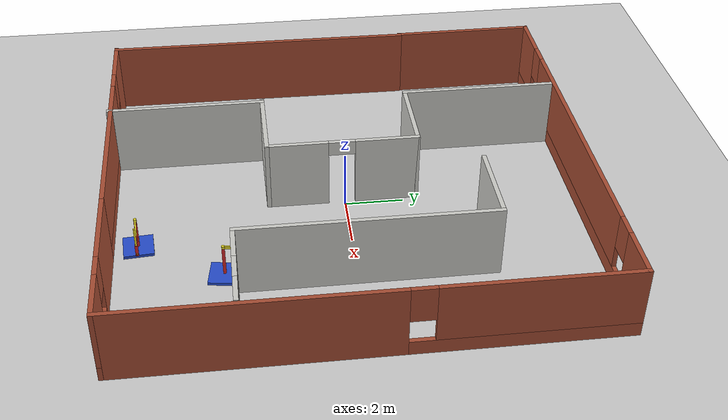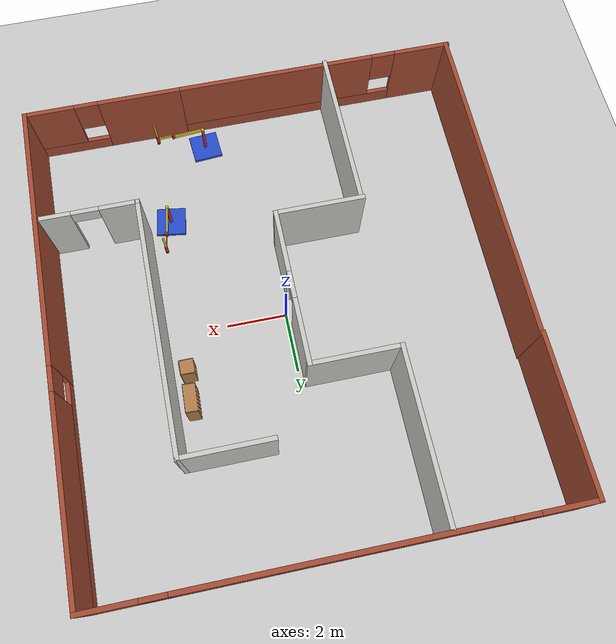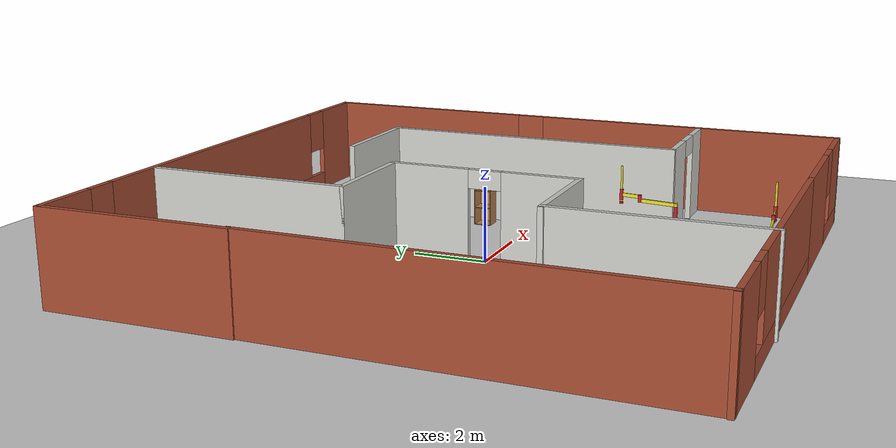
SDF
<sdf version="1.7">
 <world name="default">
  <scene>
   <ambient>0.68 0.68 0.68 1</ambient>
   <shadows>0</shadows>
   <sky><sunrise>6</sunrise><clouds><speed>12</speed></clouds></sky>
   <background>0.7 0.7 0.7 1</background>
  </scene>
  <physics type="ode">
   <max_step_size>0.001</max_step_size>
   <real_time_factor>1</real_time_factor>
   <real_time_update_rate>1000</real_time_update_rate>
  </physics>
  <light name="sun" type="directional">
   <pose>0 0 10 0 -0 0</pose>
   <diffuse>0.8 0.8 0.8 1</diffuse>
   <specular>0.2 0.2 0.2 1</specular>
   <attenuation>
    <range>1000</range>
    <constant>0.9</constant>
    <linear>0.01</linear>
    <quadratic>0.001</quadratic>
   </attenuation>
   <direction>-0.5 0.1 -0.9</direction>
   <spot><inner_angle>0</inner_angle><outer_angle>0</outer_angle><falloff>0</falloff></spot>
  </light>
  <model name="ISCAS_groundplane">
   <static>1</static>
   <link name="link">
    <collision name="collision">
     <geometry><plane><normal>0 0 1</normal><size>30 30</size></plane></geometry>
     <surface><friction><ode><mu>100</mu><mu2>50</mu2></ode></friction></surface>
    </collision>
    <visual name="visual">
     <cast_shadows>0</cast_shadows>
     <geometry><plane><normal>0 0 1</normal><size>30 30</size></plane></geometry>
     <material>
      <script>
       <uri>model://ISCAS_groundplane/materials/scripts</uri>
       <uri>model://ISCAS_groundplane/materials/textures</uri>
       <name>ISCAS_groundplane/Image</name>
      </script>
     </material>
    </visual>
   </link>
  </model>
  <model name="SampleScene">
   <pose>7e-06 -3.2e-05 0 0 0 -1.57001</pose>
   <link name="Wall_0">
    <collision name="Wall_0_Collision">
     <geometry><box><size>11.0007 0.15 2.5</size></box></geometry>
     <pose>0 0 1.25 0 -0 0</pose>
    </collision>
    <visual name="Wall_0_Visual">
     <pose>0 0 1.25 0 -0 0</pose>
     <geometry><box><size>11.0007 0.15 2.5</size></box></geometry>
     <material>
      <script><uri>file://media/materials/scripts/gazebo.material</uri><name>Gazebo/Bricks</name></script>
      <ambient>1 1 1 1</ambient>
     </material>
     <meta><layer>0</layer></meta>
    </visual>
    <pose>2.4645 -7.28966 0 0 -0 -0.007415</pose>
   </link>
   <link name="Wall_1">
    <pose>7.8895 -2.675 0 0 -0 1.5708</pose>
    <visual name="Wall_1_Visual_0">
     <pose>-3.78336 0 1.25 0 -0 0</pose>
     <geometry><box><size>1.97351 0.15 2.5</size></box></geometry>
     <material>
      <script><uri>file://media/materials/scripts/gazebo.material</uri><name>Gazebo/Bricks</name></script>
      <ambient>1 1 1 1</ambient>
     </material>
     <meta><layer>0</layer></meta>
    </visual>
    <collision name="Wall_1_Collision_0">
     <geometry><box><size>1.97351 0.15 2.5</size></box></geometry>
     <pose>-3.78336 0 1.25 0 -0 0</pose>
    </collision>
    <visual name="Wall_1_Visual_1">
     <pose>0.986754 0 0.25 0 -0 0</pose>
     <geometry><box><size>7.56672 0.15 0.5</size></box></geometry>
     <material>
      <script><uri>file://media/materials/scripts/gazebo.material</uri><name>Gazebo/Bricks</name></script>
      <ambient>1 1 1 1</ambient>
     </material>
     <meta><layer>0</layer></meta>
    </visual>
    <collision name="Wall_1_Collision_1">
     <geometry><box><size>7.56672 0.15 0.5</size></box></geometry>
     <pose>0.986754 0 0.25 0 -0 0</pose>
    </collision>
    <visual name="Wall_1_Visual_2">
     <pose>1.38675 0 1.5 0 -0 0</pose>
     <geometry><box><size>6.76672 0.15 2</size></box></geometry>
     <material>
      <script><uri>file://media/materials/scripts/gazebo.material</uri><name>Gazebo/Bricks</name></script>
      <ambient>1 1 1 1</ambient>
     </material>
     <meta><layer>0</layer></meta>
    </visual>
    <collision name="Wall_1_Collision_2">
     <geometry><box><size>6.76672 0.15 2</size></box></geometry>
     <pose>1.38675 0 1.5 0 -0 0</pose>
    </collision>
    <visual name="Wall_1_Visual_3">
     <pose>-2.39661 0 1.9 0 -0 0</pose>
     <geometry><box><size>0.8 0.15 1.2</size></box></geometry>
     <material>
      <script><uri>file://media/materials/scripts/gazebo.material</uri><name>Gazebo/Bricks</name></script>
      <ambient>1 1 1 1</ambient>
     </material>
     <meta><layer>0</layer></meta>
    </visual>
    <collision name="Wall_1_Collision_3">
     <geometry><box><size>0.8 0.15 1.2</size></box></geometry>
     <pose>-2.39661 0 1.9 0 -0 0</pose>
    </collision>
   </link>
   <link name="Wall_11">
    <pose>3.89864 5.63446 0 0 -0 -1.5708</pose>
    <visual name="Wall_11_Visual_0">
     <pose>-1.11091 0 1.25 0 -0 0</pose>
     <geometry><box><size>1.02818 0.15 2.5</size></box></geometry>
     <material>
      <script><uri>file://media/materials/scripts/gazebo.material</uri><name>Gazebo/CeilingTiled</name></script>
      <ambient>0.921569 0.807843 0.615686 1</ambient>
     </material>
     <meta><layer>0</layer></meta>
    </visual>
    <collision name="Wall_11_Collision_0">
     <geometry><box><size>1.02818 0.15 2.5</size></box></geometry>
     <pose>-1.11091 0 1.25 0 -0 0</pose>
    </collision>
    <visual name="Wall_11_Visual_1">
     <pose>0.964093 0 1.25 0 -0 0</pose>
     <geometry><box><size>1.32181 0.15 2.5</size></box></geometry>
     <material>
      <script><uri>file://media/materials/scripts/gazebo.material</uri><name>Gazebo/CeilingTiled</name></script>
      <ambient>0.921569 0.807843 0.615686 1</ambient>
     </material>
     <meta><layer>0</layer></meta>
    </visual>
    <collision name="Wall_11_Collision_1">
     <geometry><box><size>1.32181 0.15 2.5</size></box></geometry>
     <pose>0.964093 0 1.25 0 -0 0</pose>
    </collision>
    <visual name="Wall_11_Visual_2">
     <pose>-0.146815 0 2.25 0 -0 0</pose>
     <geometry><box><size>0.9 0.15 0.5</size></box></geometry>
     <material>
      <script><uri>file://media/materials/scripts/gazebo.material</uri><name>Gazebo/CeilingTiled</name></script>
      <ambient>0.921569 0.807843 0.615686 1</ambient>
     </material>
     <meta><layer>0</layer></meta>
    </visual>
    <collision name="Wall_11_Collision_2">
     <geometry><box><size>0.9 0.15 0.5</size></box></geometry>
     <pose>-0.146815 0 2.25 0 -0 0</pose>
    </collision>
   </link>
   <link name="Wall_12">
    <collision name="Wall_12_Collision">
     <geometry><box><size>8.5 0.15 2.5</size></box></geometry>
     <pose>0 0 1.25 0 -0 0</pose>
    </collision>
    <visual name="Wall_12_Visual">
     <pose>0 0 1.25 0 -0 0</pose>
     <geometry><box><size>8.5 0.15 2.5</size></box></geometry>
     <material>
      <script><uri>file://media/materials/scripts/gazebo.material</uri><name>Gazebo/CeilingTiled</name></script>
      <ambient>0.921569 0.807843 0.615686 1</ambient>
     </material>
     <meta><layer>0</layer></meta>
    </visual>
    <pose>-0.276365 4.08446 0 0 -0 3.14159</pose>
   </link>
   <link name="Wall_13">
    <collision name="Wall_13_Collision">
     <geometry><box><size>3 0.15 2.5</size></box></geometry>
     <pose>0 0 1.25 0 -0 0</pose>
    </collision>
    <visual name="Wall_13_Visual">
     <pose>0 0 1.25 0 -0 0</pose>
     <geometry><box><size>3 0.15 2.5</size></box></geometry>
     <material>
      <script><uri>file://media/materials/scripts/gazebo.material</uri><name>Gazebo/CeilingTiled</name></script>
      <ambient>0.921569 0.807843 0.615686 1</ambient>
     </material>
     <meta><layer>0</layer></meta>
    </visual>
    <pose>-4.45137 2.65946 0 0 -0 -1.5708</pose>
   </link>
   <link name="Wall_24">
    <collision name="Wall_24_Collision">
     <geometry><box><size>5.5 0.15 2.5</size></box></geometry>
     <pose>0 0 1.25 0 -0 0</pose>
    </collision>
    <visual name="Wall_24_Visual">
     <pose>0 0 1.25 0 -0 0</pose>
     <geometry><box><size>5.5 0.15 2.5</size></box></geometry>
     <material>
      <script><uri>file://media/materials/scripts/gazebo.material</uri><name>Gazebo/CeilingTiled</name></script>
      <ambient>0.921569 0.807843 0.615686 1</ambient>
     </material>
     <meta><layer>0</layer></meta>
    </visual>
    <pose>-5.16403 -3.04999 0 0 -0 0</pose>
   </link>
   <link name="Wall_25">
    <collision name="Wall_25_Collision">
     <geometry><box><size>3 0.15 2.5</size></box></geometry>
     <pose>0 0 1.25 0 -0 0</pose>
    </collision>
    <visual name="Wall_25_Visual">
     <pose>0 0 1.25 0 -0 0</pose>
     <geometry><box><size>3 0.15 2.5</size></box></geometry>
     <material>
      <script><uri>file://media/materials/scripts/gazebo.material</uri><name>Gazebo/CeilingTiled</name></script>
      <ambient>0.921569 0.807843 0.615686 1</ambient>
     </material>
     <meta><layer>0</layer></meta>
    </visual>
    <pose>-2.48903 -1.62499 0 0 -0 1.5708</pose>
   </link>
   <link name="Wall_28">
    <pose>0.060971 -0.199991 0 0 -0 0</pose>
    <visual name="Wall_28_Visual_0">
     <pose>-1.52407 0 1.25 0 -0 0</pose>
     <geometry><box><size>2.20186 0.15 2.5</size></box></geometry>
     <material>
      <script><uri>file://media/materials/scripts/gazebo.material</uri><name>Gazebo/CeilingTiled</name></script>
      <ambient>0.921569 0.807843 0.615686 1</ambient>
     </material>
     <meta><layer>0</layer></meta>
    </visual>
    <collision name="Wall_28_Collision_0">
     <geometry><box><size>2.20186 0.15 2.5</size></box></geometry>
     <pose>-1.52407 0 1.25 0 -0 0</pose>
    </collision>
    <visual name="Wall_28_Visual_1">
     <pose>1.55093 0 1.25 0 -0 0</pose>
     <geometry><box><size>2.14814 0.15 2.5</size></box></geometry>
     <material>
      <script><uri>file://media/materials/scripts/gazebo.material</uri><name>Gazebo/CeilingTiled</name></script>
      <ambient>0.921569 0.807843 0.615686 1</ambient>
     </material>
     <meta><layer>0</layer></meta>
    </visual>
    <collision name="Wall_28_Collision_1">
     <geometry><box><size>2.14814 0.15 2.5</size></box></geometry>
     <pose>1.55093 0 1.25 0 -0 0</pose>
    </collision>
    <visual name="Wall_28_Visual_2">
     <pose>0.026859 0 2.25 0 -0 0</pose>
     <geometry><box><size>0.9 0.15 0.5</size></box></geometry>
     <material>
      <script><uri>file://media/materials/scripts/gazebo.material</uri><name>Gazebo/CeilingTiled</name></script>
      <ambient>0.921569 0.807843 0.615686 1</ambient>
     </material>
     <meta><layer>0</layer></meta>
    </visual>
    <collision name="Wall_28_Collision_2">
     <geometry><box><size>0.9 0.15 0.5</size></box></geometry>
     <pose>0.026859 0 2.25 0 -0 0</pose>
    </collision>
   </link>
   <link name="Wall_29">
    <collision name="Wall_29_Collision">
     <geometry><box><size>3.016 0.15 2.5</size></box></geometry>
     <pose>0 0 1.25 0 -0 0</pose>
    </collision>
    <visual name="Wall_29_Visual">
     <pose>0 0 1.25 0 -0 0</pose>
     <geometry><box><size>3.016 0.15 2.5</size></box></geometry>
     <material>
      <script><uri>file://media/materials/scripts/gazebo.material</uri><name>Gazebo/CeilingTiled</name></script>
      <ambient>0.921569 0.807843 0.615686 1</ambient>
     </material>
     <meta><layer>0</layer></meta>
    </visual>
    <pose>2.61097 -1.63299 0 0 -0 -1.5708</pose>
   </link>
   <link name="Wall_3">
    <pose>7.8895 4.69511 0 0 -0 1.5708</pose>
    <visual name="Wall_3_Visual_0">
     <pose>-1.27132 0 1.25 0 -0 0</pose>
     <geometry><box><size>2.95736 0.15 2.5</size></box></geometry>
     <material>
      <script><uri>file://media/materials/scripts/gazebo.material</uri><name>Gazebo/Bricks</name></script>
      <ambient>1 1 1 1</ambient>
     </material>
     <meta><layer>0</layer></meta>
    </visual>
    <collision name="Wall_3_Collision_0">
     <geometry><box><size>2.95736 0.15 2.5</size></box></geometry>
     <pose>-1.27132 0 1.25 0 -0 0</pose>
    </collision>
    <visual name="Wall_3_Visual_1">
     <pose>1.47868 0 0.25 0 -0 0</pose>
     <geometry><box><size>2.54264 0.15 0.5</size></box></geometry>
     <material>
      <script><uri>file://media/materials/scripts/gazebo.material</uri><name>Gazebo/Bricks</name></script>
      <ambient>1 1 1 1</ambient>
     </material>
     <meta><layer>0</layer></meta>
    </visual>
    <collision name="Wall_3_Collision_1">
     <geometry><box><size>2.54264 0.15 0.5</size></box></geometry>
     <pose>1.47868 0 0.25 0 -0 0</pose>
    </collision>
    <visual name="Wall_3_Visual_2">
     <pose>1.87868 0 1.5 0 -0 0</pose>
     <geometry><box><size>1.74264 0.15 2</size></box></geometry>
     <material>
      <script><uri>file://media/materials/scripts/gazebo.material</uri><name>Gazebo/Bricks</name></script>
      <ambient>1 1 1 1</ambient>
     </material>
     <meta><layer>0</layer></meta>
    </visual>
    <collision name="Wall_3_Collision_2">
     <geometry><box><size>1.74264 0.15 2</size></box></geometry>
     <pose>1.87868 0 1.5 0 -0 0</pose>
    </collision>
    <visual name="Wall_3_Visual_3">
     <pose>0.607358 0 1.9 0 -0 0</pose>
     <geometry><box><size>0.8 0.15 1.2</size></box></geometry>
     <material>
      <script><uri>file://media/materials/scripts/gazebo.material</uri><name>Gazebo/Bricks</name></script>
      <ambient>1 1 1 1</ambient>
     </material>
     <meta><layer>0</layer></meta>
    </visual>
    <collision name="Wall_3_Collision_3">
     <geometry><box><size>0.8 0.15 1.2</size></box></geometry>
     <pose>0.607358 0 1.9 0 -0 0</pose>
    </collision>
   </link>
   <link name="Wall_30">
    <collision name="Wall_30_Collision">
     <geometry><box><size>5.5 0.15 2.5</size></box></geometry>
     <pose>0 0 1.25 0 -0 0</pose>
    </collision>
    <visual name="Wall_30_Visual">
     <pose>0 0 1.25 0 -0 0</pose>
     <geometry><box><size>5.5 0.15 2.5</size></box></geometry>
     <material>
      <script><uri>file://media/materials/scripts/gazebo.material</uri><name>Gazebo/CeilingTiled</name></script>
      <ambient>0.921569 0.807843 0.615686 1</ambient>
     </material>
     <meta><layer>0</layer></meta>
    </visual>
    <pose>5.28597 -3.01279 0 0 -0 0</pose>
   </link>
   <link name="Wall_7">
    <pose>-0.035498 7.37011 0 0 -0 3.14159</pose>
    <visual name="Wall_7_Visual_0">
     <pose>-3.51686 0 1.25 0 -0 0</pose>
     <geometry><box><size>8.96628 0.15 2.5</size></box></geometry>
     <material>
      <script><uri>file://media/materials/scripts/gazebo.material</uri><name>Gazebo/Bricks</name></script>
      <ambient>1 1 1 1</ambient>
     </material>
     <meta><layer>0</layer></meta>
    </visual>
    <collision name="Wall_7_Collision_0">
     <geometry><box><size>8.96628 0.15 2.5</size></box></geometry>
     <pose>-3.51686 0 1.25 0 -0 0</pose>
    </collision>
    <visual name="Wall_7_Visual_1">
     <pose>4.48314 0 0.25 0 -0 0</pose>
     <geometry><box><size>7.03372 0.15 0.5</size></box></geometry>
     <material>
      <script><uri>file://media/materials/scripts/gazebo.material</uri><name>Gazebo/Bricks</name></script>
      <ambient>1 1 1 1</ambient>
     </material>
     <meta><layer>0</layer></meta>
    </visual>
    <collision name="Wall_7_Collision_1">
     <geometry><box><size>7.03372 0.15 0.5</size></box></geometry>
     <pose>4.48314 0 0.25 0 -0 0</pose>
    </collision>
    <visual name="Wall_7_Visual_2">
     <pose>4.88314 0 1.5 0 -0 0</pose>
     <geometry><box><size>6.23372 0.15 2</size></box></geometry>
     <material>
      <script><uri>file://media/materials/scripts/gazebo.material</uri><name>Gazebo/Bricks</name></script>
      <ambient>1 1 1 1</ambient>
     </material>
     <meta><layer>0</layer></meta>
    </visual>
    <collision name="Wall_7_Collision_2">
     <geometry><box><size>6.23372 0.15 2</size></box></geometry>
     <pose>4.88314 0 1.5 0 -0 0</pose>
    </collision>
    <visual name="Wall_7_Visual_3">
     <pose>1.36628 0 1.9 0 -0 0</pose>
     <geometry><box><size>0.8 0.15 1.2</size></box></geometry>
     <material>
      <script><uri>file://media/materials/scripts/gazebo.material</uri><name>Gazebo/Bricks</name></script>
      <ambient>1 1 1 1</ambient>
     </material>
     <meta><layer>0</layer></meta>
    </visual>
    <collision name="Wall_7_Collision_3">
     <geometry><box><size>0.8 0.15 1.2</size></box></geometry>
     <pose>1.36628 0 1.9 0 -0 0</pose>
    </collision>
   </link>
   <link name="Wall_8">
    <pose>-7.9605 0.05 0 0 -0 -1.5708</pose>
    <visual name="Wall_8_Visual_0">
     <pose>-6.49719 0 1.25 0 -0 0</pose>
     <geometry><box><size>1.79584 0.15 2.5</size></box></geometry>
     <material>
      <script><uri>file://media/materials/scripts/gazebo.material</uri><name>Gazebo/Bricks</name></script>
      <ambient>1 1 1 1</ambient>
     </material>
     <meta><layer>0</layer></meta>
    </visual>
    <collision name="Wall_8_Collision_0">
     <geometry><box><size>1.79584 0.15 2.5</size></box></geometry>
     <pose>-6.49719 0 1.25 0 -0 0</pose>
    </collision>
    <visual name="Wall_8_Visual_1">
     <pose>0.897921 0 0.25 0 -0 0</pose>
     <geometry><box><size>12.9944 0.15 0.5</size></box></geometry>
     <material>
      <script><uri>file://media/materials/scripts/gazebo.material</uri><name>Gazebo/Bricks</name></script>
      <ambient>1 1 1 1</ambient>
     </material>
     <meta><layer>0</layer></meta>
    </visual>
    <collision name="Wall_8_Collision_1">
     <geometry><box><size>12.9944 0.15 0.5</size></box></geometry>
     <pose>0.897921 0 0.25 0 -0 0</pose>
    </collision>
    <visual name="Wall_8_Visual_2">
     <pose>0.014368 0 1.5 0 -0 0</pose>
     <geometry><box><size>9.62728 0.15 2</size></box></geometry>
     <material>
      <script><uri>file://media/materials/scripts/gazebo.material</uri><name>Gazebo/Bricks</name></script>
      <ambient>1 1 1 1</ambient>
     </material>
     <meta><layer>0</layer></meta>
    </visual>
    <collision name="Wall_8_Collision_2">
     <geometry><box><size>9.62728 0.15 2</size></box></geometry>
     <pose>0.014368 0 1.5 0 -0 0</pose>
    </collision>
    <visual name="Wall_8_Visual_3">
     <pose>6.51156 0 1.5 0 -0 0</pose>
     <geometry><box><size>1.76711 0.15 2</size></box></geometry>
     <material>
      <script><uri>file://media/materials/scripts/gazebo.material</uri><name>Gazebo/Bricks</name></script>
      <ambient>1 1 1 1</ambient>
     </material>
     <meta><layer>0</layer></meta>
    </visual>
    <collision name="Wall_8_Collision_3">
     <geometry><box><size>1.76711 0.15 2</size></box></geometry>
     <pose>6.51156 0 1.5 0 -0 0</pose>
    </collision>
    <visual name="Wall_8_Visual_4">
     <pose>-5.19927 0 1.9 0 -0 0</pose>
     <geometry><box><size>0.8 0.15 1.2</size></box></geometry>
     <material>
      <script><uri>file://media/materials/scripts/gazebo.material</uri><name>Gazebo/Bricks</name></script>
      <ambient>1 1 1 1</ambient>
     </material>
     <meta><layer>0</layer></meta>
    </visual>
    <collision name="Wall_8_Collision_4">
     <geometry><box><size>0.8 0.15 1.2</size></box></geometry>
     <pose>-5.19927 0 1.9 0 -0 0</pose>
    </collision>
    <visual name="Wall_8_Visual_5">
     <pose>5.22801 0 1.9 0 -0 0</pose>
     <geometry><box><size>0.8 0.15 1.2</size></box></geometry>
     <material>
      <script><uri>file://media/materials/scripts/gazebo.material</uri><name>Gazebo/Bricks</name></script>
      <ambient>1 1 1 1</ambient>
     </material>
     <meta><layer>0</layer></meta>
    </visual>
    <collision name="Wall_8_Collision_5">
     <geometry><box><size>0.8 0.15 1.2</size></box></geometry>
     <pose>5.22801 0 1.9 0 -0 0</pose>
    </collision>
   </link>
   <link name="Wall_9">
    <collision name="Wall_9_Collision">
     <geometry><box><size>5.15037 0.15 2.5</size></box></geometry>
     <pose>0 0 1.25 0 -0 0</pose>
    </collision>
    <visual name="Wall_9_Visual">
     <pose>0 0 1.25 0 -0 0</pose>
     <geometry><box><size>5.15037 0.15 2.5</size></box></geometry>
     <material>
      <script><uri>file://media/materials/scripts/gazebo.material</uri><name>Gazebo/Bricks</name></script>
      <ambient>1 1 1 1</ambient>
     </material>
     <meta><layer>0</layer></meta>
    </visual>
    <pose>-5.4605 -7.3 0 0 -0 0.004136</pose>
   </link>
   <static>1</static>
  </model>
  <gravity>0 0 -9.8</gravity>
  <magnetic_field>6e-06 2.3e-05 -4.2e-05</magnetic_field>
  <atmosphere type="adiabatic"/>
  <spherical_coordinates>
   <surface_model>EARTH_WGS84</surface_model>
   <latitude_deg>0</latitude_deg>
   <longitude_deg>0</longitude_deg>
   <elevation>0</elevation>
   <heading_deg>0</heading_deg>
  </spherical_coordinates>
  <model name="bookshelf">
   <static>1</static>
   <link name="link">
    <inertial><mass>1</mass></inertial>
    <collision name="back">
     <pose>0 0.005 0.6 0 -0 0</pose>
     <geometry><box><size>0.9 0.01 1.2</size></box></geometry>
    </collision>
    <visual name="visual1">
     <pose>0 0.005 0.6 0 -0 0</pose>
     <geometry><box><size>0.9 0.01 1.2</size></box></geometry>
     <material>
      <script><uri>file://media/materials/scripts/gazebo.material</uri><name>Gazebo/Wood</name></script>
     </material>
    </visual>
    <collision name="left_side">
     <pose>0.45 -0.195 0.6 0 -0 0</pose>
     <geometry><box><size>0.02 0.4 1.2</size></box></geometry>
    </collision>
    <visual name="visual2">
     <pose>0.45 -0.195 0.6 0 -0 0</pose>
     <geometry><box><size>0.02 0.4 1.2</size></box></geometry>
     <material>
      <script><uri>file://media/materials/scripts/gazebo.material</uri><name>Gazebo/Wood</name></script>
     </material>
    </visual>
    <collision name="right_side">
     <pose>-0.45 -0.195 0.6 0 -0 0</pose>
     <geometry><box><size>0.02 0.4 1.2</size></box></geometry>
    </collision>
    <visual name="visual3">
     <pose>-0.45 -0.195 0.6 0 -0 0</pose>
     <geometry><box><size>0.02 0.4 1.2</size></box></geometry>
     <material>
      <script><uri>file://media/materials/scripts/gazebo.material</uri><name>Gazebo/Wood</name></script>
     </material>
    </visual>
    <collision name="bottom">
     <pose>0 -0.195 0.03 0 -0 0</pose>
     <geometry><box><size>0.88 0.4 0.06</size></box></geometry>
    </collision>
    <visual name="visual4">
     <pose>0 -0.195 0.03 0 -0 0</pose>
     <geometry><box><size>0.88 0.4 0.06</size></box></geometry>
     <material>
      <script><uri>file://media/materials/scripts/gazebo.material</uri><name>Gazebo/Wood</name></script>
     </material>
    </visual>
    <collision name="top">
     <pose>0 -0.195 1.19 0 -0 0</pose>
     <geometry><box><size>0.88 0.4 0.02</size></box></geometry>
    </collision>
    <visual name="visual5">
     <pose>0 -0.195 1.19 0 -0 0</pose>
     <geometry><box><size>0.88 0.4 0.02</size></box></geometry>
     <material>
      <script><uri>file://media/materials/scripts/gazebo.material</uri><name>Gazebo/Wood</name></script>
     </material>
    </visual>
    <collision name="low_shelf">
     <pose>0 -0.195 0.43 0 -0 0</pose>
     <geometry><box><size>0.88 0.4 0.02</size></box></geometry>
    </collision>
    <visual name="visual6">
     <pose>0 -0.195 0.43 0 -0 0</pose>
     <geometry><box><size>0.88 0.4 0.02</size></box></geometry>
     <material>
      <script><uri>file://media/materials/scripts/gazebo.material</uri><name>Gazebo/Wood</name></script>
     </material>
    </visual>
    <collision name="high_shelf">
     <pose>0 -0.195 0.8 0 -0 0</pose>
     <geometry><box><size>0.88 0.4 0.02</size></box></geometry>
    </collision>
    <visual name="visual7">
     <pose>0 -0.195 0.8 0 -0 0</pose>
     <geometry><box><size>0.88 0.4 0.02</size></box></geometry>
     <material>
      <script><uri>file://media/materials/scripts/gazebo.material</uri><name>Gazebo/Wood</name></script>
     </material>
    </visual>
   </link>
   <pose>3.72372 2.45918 0 0 0 -1.59979</pose>
  </model>
  <model name="wood_cube_5cm">
   <link name="link">
    <pose>0 0 0.025 0 -0 0</pose>
    <inertial>
     <mass>0.0565</mass>
     <inertia>
      <ixx>2.35417e-05</ixx>
      <ixy>0</ixy>
      <ixz>0</ixz>
      <iyy>2.35417e-05</iyy>
      <iyz>0</iyz>
      <izz>2.35417e-05</izz>
     </inertia>
    </inertial>
    <collision name="collision">
     <geometry><box><size>0.05 0.05 0.05</size></box></geometry>
     <surface>
      <contact>
       <poissons_ratio>0.347</poissons_ratio>
       <elastic_modulus>8.8e+09</elastic_modulus>
       <ode><kp>100000</kp><kd>1</kd><max_vel>1</max_vel><min_depth>0.001</min_depth></ode>
      </contact>
      <friction>
       <torsional>
        <coefficient>1</coefficient>
        <use_patch_radius>0</use_patch_radius>
        <surface_radius>0.05</surface_radius>
       </torsional>
      </friction>
     </surface>
    </collision>
    <visual name="visual">
     <geometry><box><size>0.05 0.05 0.05</size></box></geometry>
     <material>
      <script><uri>file://media/materials/scripts/gazebo.material</uri><name>Gazebo/Wood</name></script>
     </material>
    </visual>
   </link>
   <pose>3.44183 2.16207 0.058999 0 -0 0</pose>
  </model>
  <model name="beer">
   <link name="link">
    <pose>0 0 0.115 0 -0 0</pose>
    <inertial>
     <mass>0.39</mass>
     <inertia><ixx>0.00058</ixx><ixy>0</ixy><ixz>0</ixz><iyy>0.00058</iyy><iyz>0</iyz><izz>0.00019</izz></inertia>
    </inertial>
    <collision name="collision">
     <geometry><cylinder><radius>0.055</radius><length>0.23</length></cylinder></geometry>
    </collision>
    <visual name="visual">
     <geometry><cylinder><radius>0.055</radius><length>0.23</length></cylinder></geometry>
     <material>
      <script>
       <uri>model://beer/materials/scripts</uri>
       <uri>model://beer/materials/textures</uri>
       <name>Beer/Diffuse</name>
      </script>
     </material>
    </visual>
   </link>
   <pose>3.50537 2.76894 0.060004 1.4e-05 7.2e-05 -0.000266</pose>
  </model>
  <model name="beer_clone">
   <link name="link">
    <pose>0 0 0.115 0 -0 0</pose>
    <inertial>
     <mass>0.39</mass>
     <inertia><ixx>0.00058</ixx><ixy>0</ixy><ixz>0</ixz><iyy>0.00058</iyy><iyz>0</iyz><izz>0.00019</izz></inertia>
    </inertial>
    <collision name="collision">
     <geometry><cylinder><radius>0.055</radius><length>0.23</length></cylinder></geometry>
    </collision>
    <visual name="visual">
     <geometry><cylinder><radius>0.055</radius><length>0.23</length></cylinder></geometry>
     <material>
      <script>
       <uri>model://beer/materials/scripts</uri>
       <uri>model://beer/materials/textures</uri>
       <name>Beer/Diffuse</name>
      </script>
     </material>
    </visual>
   </link>
   <pose>3.48611 2.4567 0.060001 6e-06 2.4e-05 -0.000292</pose>
  </model>
  <model name="beer_clone_0">
   <link name="link">
    <pose>0 0 0.115 0 -0 0</pose>
    <inertial>
     <mass>0.39</mass>
     <inertia><ixx>0.00058</ixx><ixy>0</ixy><ixz>0</ixz><iyy>0.00058</iyy><iyz>0</iyz><izz>0.00019</izz></inertia>
    </inertial>
    <collision name="collision">
     <geometry><cylinder><radius>0.055</radius><length>0.23</length></cylinder></geometry>
    </collision>
    <visual name="visual">
     <geometry><cylinder><radius>0.055</radius><length>0.23</length></cylinder></geometry>
     <material>
      <script>
       <uri>model://beer/materials/scripts</uri>
       <uri>model://beer/materials/textures</uri>
       <name>Beer/Diffuse</name>
      </script>
     </material>
    </visual>
   </link>
   <pose>3.48792 2.63038 0.440005 2.2e-05 8.8e-05 -0.000442</pose>
  </model>
  <model name="cabinet">
   <static>1</static>
   <link name="cabinet_bottom_plate">
    <inertial>
     <pose>0 0 -1 0 -0 0</pose>
     <inertia><ixx>2.05</ixx><ixy>0</ixy><ixz>0</ixz><iyy>2.05</iyy><iyz>0</iyz><izz>2.05</izz></inertia>
     <mass>25</mass>
    </inertial>
    <collision name="cabinet_bottom_plate_geom">
     <pose>0 0 0.01 0 -0 0</pose>
     <geometry><box><size>0.45 0.45 0.02</size></box></geometry>
    </collision>
    <visual name="cabinet_bottom_plate_geom_visual">
     <pose>0 0 0.01 0 -0 0</pose>
     <geometry><box><size>0.45 0.45 0.02</size></box></geometry>
     <material>
      <script><uri>file://media/materials/scripts/gazebo.material</uri><name>Gazebo/Wood</name></script>
     </material>
    </visual>
    <collision name="cabinet_bottom_plate_geom_cabinet_back_plate">
     <pose>0.235 0 0.51 0 -0 0</pose>
     <geometry><box><size>0.02 0.45 1.02</size></box></geometry>
    </collision>
    <visual name="cabinet_bottom_plate_geom_cabinet_back_plate_visual">
     <pose>0.235 0 0.51 0 -0 0</pose>
     <geometry><box><size>0.02 0.45 1.02</size></box></geometry>
     <material>
      <script><uri>file://media/materials/scripts/gazebo.material</uri><name>Gazebo/Wood</name></script>
     </material>
    </visual>
    <collision name="cabinet_bottom_plate_geom_cabinet_left_plate">
     <pose>0 0.235 0.51 0 -0 0</pose>
     <geometry><box><size>0.45 0.02 1.02</size></box></geometry>
    </collision>
    <visual name="cabinet_bottom_plate_geom_cabinet_left_plate_visual">
     <pose>0 0.235 0.51 0 -0 0</pose>
     <geometry><box><size>0.45 0.02 1.02</size></box></geometry>
     <material>
      <script><uri>file://media/materials/scripts/gazebo.material</uri><name>Gazebo/Wood</name></script>
     </material>
    </visual>
    <collision name="cabinet_bottom_plate_geom_cabinet_middle_plate">
     <pose>0 0 0.51 0 -0 0</pose>
     <geometry><box><size>0.45 0.45 0.02</size></box></geometry>
    </collision>
    <visual name="cabinet_bottom_plate_geom_cabinet_middle_plate_visual">
     <pose>0 0 0.51 0 -0 0</pose>
     <geometry><box><size>0.45 0.45 0.02</size></box></geometry>
     <material>
      <script><uri>file://media/materials/scripts/gazebo.material</uri><name>Gazebo/Wood</name></script>
     </material>
    </visual>
    <collision name="cabinet_bottom_plate_geom_cabinet_right_plate">
     <pose>0 -0.235 0.51 0 -0 0</pose>
     <geometry><box><size>0.45 0.02 1.02</size></box></geometry>
    </collision>
    <visual name="cabinet_bottom_plate_geom_cabinet_right_plate_visual">
     <pose>0 -0.235 0.51 0 -0 0</pose>
     <geometry><box><size>0.45 0.02 1.02</size></box></geometry>
     <material>
      <script><uri>file://media/materials/scripts/gazebo.material</uri><name>Gazebo/Wood</name></script>
     </material>
    </visual>
    <collision name="cabinet_bottom_plate_geom_cabinet_top_plate">
     <pose>0 0 1.01 0 -0 0</pose>
     <geometry><box><size>0.45 0.45 0.02</size></box></geometry>
    </collision>
    <visual name="cabinet_bottom_plate_geom_cabinet_top_plate_visual">
     <pose>0 0 1.01 0 -0 0</pose>
     <geometry><box><size>0.45 0.45 0.02</size></box></geometry>
     <material>
      <script><uri>file://media/materials/scripts/gazebo.material</uri><name>Gazebo/Wood</name></script>
     </material>
    </visual>
   </link>
   <pose>3.49003 1.40986 0.00605 0 -0 0</pose>
  </model>
  <model name="beer_clone_0_clone">
   <link name="link">
    <pose>0 0 0.115 0 -0 0</pose>
    <inertial>
     <mass>0.39</mass>
     <inertia><ixx>0.00058</ixx><ixy>0</ixy><ixz>0</ixz><iyy>0.00058</iyy><iyz>0</iyz><izz>0.00019</izz></inertia>
    </inertial>
    <collision name="collision">
     <geometry><cylinder><radius>0.055</radius><length>0.23</length></cylinder></geometry>
    </collision>
    <visual name="visual">
     <geometry><cylinder><radius>0.055</radius><length>0.23</length></cylinder></geometry>
     <material>
      <script>
       <uri>model://beer/materials/scripts</uri>
       <uri>model://beer/materials/textures</uri>
       <name>Beer/Diffuse</name>
      </script>
     </material>
    </visual>
   </link>
   <pose>3.52262 2.76226 0.440001 4e-06 1.6e-05 -0.000272</pose>
  </model>
  <model name="beer_clone_0_clone_0">
   <link name="link">
    <pose>0 0 0.115 0 -0 0</pose>
    <inertial>
     <mass>0.39</mass>
     <inertia><ixx>0.00058</ixx><ixy>0</ixy><ixz>0</ixz><iyy>0.00058</iyy><iyz>0</iyz><izz>0.00019</izz></inertia>
    </inertial>
    <collision name="collision">
     <geometry><cylinder><radius>0.055</radius><length>0.23</length></cylinder></geometry>
    </collision>
    <visual name="visual">
     <geometry><cylinder><radius>0.055</radius><length>0.23</length></cylinder></geometry>
     <material>
      <script>
       <uri>model://beer/materials/scripts</uri>
       <uri>model://beer/materials/textures</uri>
       <name>Beer/Diffuse</name>
      </script>
     </material>
    </visual>
   </link>
   <pose>3.49136 2.61671 0.060006 2.6e-05 0.000101 -0.000323</pose>
  </model>
  <model name="simple_arm_clone">
   <link name="arm_base">
    <inertial>
     <pose>0 0 0.00099 0 -0 0</pose>
     <inertia><ixx>1.11</ixx><ixy>0</ixy><ixz>0</ixz><iyy>100.11</iyy><iyz>0</iyz><izz>1.01</izz></inertia>
     <mass>101</mass>
    </inertial>
    <collision name="arm_base_geom">
     <pose>0 0 0.05 0 -0 0</pose>
     <geometry><box><size>1 1 0.1</size></box></geometry>
    </collision>
    <visual name="arm_base_geom_visual">
     <pose>0 0 0.05 0 -0 0</pose>
     <geometry><box><size>1 1 0.1</size></box></geometry>
     <material>
      <script><uri>file://media/materials/scripts/gazebo.material</uri><name>Gazebo/Blue</name></script>
     </material>
    </visual>
    <collision name="arm_base_geom_arm_trunk">
     <pose>0 0 0.6 0 -0 0</pose>
     <geometry><cylinder><radius>0.05</radius><length>1</length></cylinder></geometry>
    </collision>
    <visual name="arm_base_geom_arm_trunk_visual">
     <pose>0 0 0.6 0 -0 0</pose>
     <geometry><cylinder><radius>0.05</radius><length>1</length></cylinder></geometry>
     <material>
      <script><uri>file://media/materials/scripts/gazebo.material</uri><name>Gazebo/Red</name></script>
     </material>
    </visual>
   </link>
   <link name="arm_shoulder_pan">
    <pose>0 0 1.1 0 -0 0</pose>
    <inertial>
     <pose>0.045455 0 0 0 -0 0</pose>
     <inertia><ixx>0.011</ixx><ixy>0</ixy><ixz>0</ixz><iyy>0.0225</iyy><iyz>0</iyz><izz>0.0135</izz></inertia>
     <mass>1.1</mass>
    </inertial>
    <collision name="arm_shoulder_pan_geom">
     <pose>0 0 0.05 0 -0 0</pose>
     <geometry><cylinder><radius>0.05</radius><length>0.1</length></cylinder></geometry>
    </collision>
    <visual name="arm_shoulder_pan_geom_visual">
     <pose>0 0 0.05 0 -0 0</pose>
     <geometry><cylinder><radius>0.05</radius><length>0.1</length></cylinder></geometry>
     <material>
      <script><uri>file://media/materials/scripts/gazebo.material</uri><name>Gazebo/Yellow</name></script>
     </material>
    </visual>
    <collision name="arm_shoulder_pan_geom_arm_shoulder">
     <pose>0.55 0 0.05 0 -0 0</pose>
     <geometry><box><size>1 0.05 0.1</size></box></geometry>
    </collision>
    <visual name="arm_shoulder_pan_geom_arm_shoulder_visual">
     <pose>0.55 0 0.05 0 -0 0</pose>
     <geometry><box><size>1 0.05 0.1</size></box></geometry>
     <material>
      <script><uri>file://media/materials/scripts/gazebo.material</uri><name>Gazebo/Yellow</name></script>
     </material>
    </visual>
   </link>
   <link name="arm_elbow_pan">
    <pose>1.05 0 1.1 0 -0 0</pose>
    <inertial>
     <pose>0.0875 0 0.083333 0 -0 0</pose>
     <inertia>
      <ixx>0.031</ixx>
      <ixy>0</ixy>
      <ixz>0.005</ixz>
      <iyy>0.07275</iyy>
      <iyz>0</iyz>
      <izz>0.04475</izz>
     </inertia>
     <mass>1.2</mass>
    </inertial>
    <collision name="arm_elbow_pan_geom">
     <pose>0 0 0.1 0 -0 0</pose>
     <geometry><cylinder><radius>0.05</radius><length>0.2</length></cylinder></geometry>
    </collision>
    <visual name="arm_elbow_pan_geom_visual">
     <pose>0 0 0.1 0 -0 0</pose>
     <geometry><cylinder><radius>0.05</radius><length>0.2</length></cylinder></geometry>
     <material>
      <script><uri>file://media/materials/scripts/gazebo.material</uri><name>Gazebo/Red</name></script>
     </material>
    </visual>
    <collision name="arm_elbow_pan_geom_arm_elbow">
     <pose>0.3 0 0.15 0 -0 0</pose>
     <geometry><box><size>0.5 0.03 0.1</size></box></geometry>
    </collision>
    <visual name="arm_elbow_pan_geom_arm_elbow_visual">
     <pose>0.3 0 0.15 0 -0 0</pose>
     <geometry><box><size>0.5 0.03 0.1</size></box></geometry>
     <material>
      <script><uri>file://media/materials/scripts/gazebo.material</uri><name>Gazebo/Yellow</name></script>
     </material>
    </visual>
    <collision name="arm_elbow_pan_geom_arm_wrist">
     <pose>0.55 0 0.15 0 -0 0</pose>
     <geometry><cylinder><radius>0.05</radius><length>0.3</length></cylinder></geometry>
    </collision>
    <visual name="arm_elbow_pan_geom_arm_wrist_visual">
     <pose>0.55 0 0.15 0 -0 0</pose>
     <geometry><cylinder><radius>0.05</radius><length>0.3</length></cylinder></geometry>
     <material>
      <script><uri>file://media/materials/scripts/gazebo.material</uri><name>Gazebo/Red</name></script>
     </material>
    </visual>
   </link>
   <link name="arm_wrist_lift">
    <pose>1.6 0 1.05 0 -0 0</pose>
    <inertial>
     <inertia><ixx>0.01</ixx><ixy>0</ixy><ixz>0</ixz><iyy>0.01</iyy><iyz>0</iyz><izz>0.001</izz></inertia>
     <mass>0.1</mass>
    </inertial>
    <collision name="arm_wrist_lift_geom">
     <pose>0 0 0.5 0 -0 0</pose>
     <geometry><cylinder><radius>0.03</radius><length>1</length></cylinder></geometry>
    </collision>
    <visual name="arm_wrist_lift_geom_visual">
     <pose>0 0 0.5 0 -0 0</pose>
     <geometry><cylinder><radius>0.03</radius><length>1</length></cylinder></geometry>
     <material>
      <script><uri>file://media/materials/scripts/gazebo.material</uri><name>Gazebo/Yellow</name></script>
     </material>
    </visual>
   </link>
   <link name="arm_wrist_roll">
    <pose>1.6 0 1 0 -0 0</pose>
    <inertial>
     <inertia><ixx>0.01</ixx><ixy>0</ixy><ixz>0</ixz><iyy>0.01</iyy><iyz>0</iyz><izz>0.001</izz></inertia>
     <mass>0.1</mass>
    </inertial>
    <collision name="arm_wrist_roll_geom">
     <pose>0 0 0.025 0 -0 0</pose>
     <geometry><cylinder><radius>0.05</radius><length>0.05</length></cylinder></geometry>
    </collision>
    <visual name="arm_wrist_roll_geom_visual">
     <pose>0 0 0.025 0 -0 0</pose>
     <geometry><cylinder><radius>0.05</radius><length>0.05</length></cylinder></geometry>
     <material>
      <script><uri>file://media/materials/scripts/gazebo.material</uri><name>Gazebo/Red</name></script>
     </material>
    </visual>
   </link>
   <joint name="arm_shoulder_pan_joint" type="revolute">
    <parent>arm_base</parent>
    <child>arm_shoulder_pan</child>
    <axis>
     <dynamics>
      <damping>1</damping>
      <friction>0</friction>
      <spring_reference>0</spring_reference>
      <spring_stiffness>0</spring_stiffness>
     </dynamics>
     <xyz expressed_in="__model__">0 0 1</xyz>
     <limit><lower>-1e+16</lower><upper>1e+16</upper></limit>
    </axis>
   </joint>
   <joint name="arm_elbow_pan_joint" type="revolute">
    <parent>arm_shoulder_pan</parent>
    <child>arm_elbow_pan</child>
    <axis>
     <dynamics>
      <damping>1</damping>
      <friction>0</friction>
      <spring_reference>0</spring_reference>
      <spring_stiffness>0</spring_stiffness>
     </dynamics>
     <xyz expressed_in="__model__">0 0 1</xyz>
     <limit><lower>-1e+16</lower><upper>1e+16</upper></limit>
    </axis>
   </joint>
   <joint name="arm_wrist_lift_joint" type="prismatic">
    <parent>arm_elbow_pan</parent>
    <child>arm_wrist_lift</child>
    <axis>
     <dynamics>
      <damping>1</damping>
      <friction>0</friction>
      <spring_reference>0</spring_reference>
      <spring_stiffness>0</spring_stiffness>
     </dynamics>
     <limit><lower>-0.8</lower><upper>0.1</upper></limit>
     <xyz expressed_in="__model__">0 0 1</xyz>
    </axis>
   </joint>
   <joint name="arm_wrist_roll_joint" type="revolute">
    <parent>arm_wrist_lift</parent>
    <child>arm_wrist_roll</child>
    <axis>
     <dynamics>
      <damping>1</damping>
      <friction>0</friction>
      <spring_reference>0</spring_reference>
      <spring_stiffness>0</spring_stiffness>
     </dynamics>
     <limit><lower>-2.99999</lower><upper>2.99999</upper></limit>
     <xyz expressed_in="__model__">0 0 1</xyz>
    </axis>
   </joint>
   <pose>1.58068 -7.0234 -0.00024 -0.00048 1e-06 0.077725</pose>
  </model>
  <model name="simple_arm_clone_clone">
   <link name="arm_base">
    <inertial>
     <pose>0 0 0.00099 0 -0 0</pose>
     <inertia><ixx>1.11</ixx><ixy>0</ixy><ixz>0</ixz><iyy>100.11</iyy><iyz>0</iyz><izz>1.01</izz></inertia>
     <mass>101</mass>
    </inertial>
    <collision name="arm_base_geom">
     <pose>0 0 0.05 0 -0 0</pose>
     <geometry><box><size>1 1 0.1</size></box></geometry>
    </collision>
    <visual name="arm_base_geom_visual">
     <pose>0 0 0.05 0 -0 0</pose>
     <geometry><box><size>1 1 0.1</size></box></geometry>
     <material>
      <script><uri>file://media/materials/scripts/gazebo.material</uri><name>Gazebo/Blue</name></script>
     </material>
    </visual>
    <collision name="arm_base_geom_arm_trunk">
     <pose>0 0 0.6 0 -0 0</pose>
     <geometry><cylinder><radius>0.05</radius><length>1</length></cylinder></geometry>
    </collision>
    <visual name="arm_base_geom_arm_trunk_visual">
     <pose>0 0 0.6 0 -0 0</pose>
     <geometry><cylinder><radius>0.05</radius><length>1</length></cylinder></geometry>
     <material>
      <script><uri>file://media/materials/scripts/gazebo.material</uri><name>Gazebo/Red</name></script>
     </material>
    </visual>
   </link>
   <link name="arm_shoulder_pan">
    <pose>0 0 1.1 0 -0 0</pose>
    <inertial>
     <pose>0.045455 0 0 0 -0 0</pose>
     <inertia><ixx>0.011</ixx><ixy>0</ixy><ixz>0</ixz><iyy>0.0225</iyy><iyz>0</iyz><izz>0.0135</izz></inertia>
     <mass>1.1</mass>
    </inertial>
    <collision name="arm_shoulder_pan_geom">
     <pose>0 0 0.05 0 -0 0</pose>
     <geometry><cylinder><radius>0.05</radius><length>0.1</length></cylinder></geometry>
    </collision>
    <visual name="arm_shoulder_pan_geom_visual">
     <pose>0 0 0.05 0 -0 0</pose>
     <geometry><cylinder><radius>0.05</radius><length>0.1</length></cylinder></geometry>
     <material>
      <script><uri>file://media/materials/scripts/gazebo.material</uri><name>Gazebo/Yellow</name></script>
     </material>
    </visual>
    <collision name="arm_shoulder_pan_geom_arm_shoulder">
     <pose>0.55 0 0.05 0 -0 0</pose>
     <geometry><box><size>1 0.05 0.1</size></box></geometry>
    </collision>
    <visual name="arm_shoulder_pan_geom_arm_shoulder_visual">
     <pose>0.55 0 0.05 0 -0 0</pose>
     <geometry><box><size>1 0.05 0.1</size></box></geometry>
     <material>
      <script><uri>file://media/materials/scripts/gazebo.material</uri><name>Gazebo/Yellow</name></script>
     </material>
    </visual>
   </link>
   <link name="arm_elbow_pan">
    <pose>1.05 0 1.1 0 -0 0</pose>
    <inertial>
     <pose>0.0875 0 0.083333 0 -0 0</pose>
     <inertia>
      <ixx>0.031</ixx>
      <ixy>0</ixy>
      <ixz>0.005</ixz>
      <iyy>0.07275</iyy>
      <iyz>0</iyz>
      <izz>0.04475</izz>
     </inertia>
     <mass>1.2</mass>
    </inertial>
    <collision name="arm_elbow_pan_geom">
     <pose>0 0 0.1 0 -0 0</pose>
     <geometry><cylinder><radius>0.05</radius><length>0.2</length></cylinder></geometry>
    </collision>
    <visual name="arm_elbow_pan_geom_visual">
     <pose>0 0 0.1 0 -0 0</pose>
     <geometry><cylinder><radius>0.05</radius><length>0.2</length></cylinder></geometry>
     <material>
      <script><uri>file://media/materials/scripts/gazebo.material</uri><name>Gazebo/Red</name></script>
     </material>
    </visual>
    <collision name="arm_elbow_pan_geom_arm_elbow">
     <pose>0.3 0 0.15 0 -0 0</pose>
     <geometry><box><size>0.5 0.03 0.1</size></box></geometry>
    </collision>
    <visual name="arm_elbow_pan_geom_arm_elbow_visual">
     <pose>0.3 0 0.15 0 -0 0</pose>
     <geometry><box><size>0.5 0.03 0.1</size></box></geometry>
     <material>
      <script><uri>file://media/materials/scripts/gazebo.material</uri><name>Gazebo/Yellow</name></script>
     </material>
    </visual>
    <collision name="arm_elbow_pan_geom_arm_wrist">
     <pose>0.55 0 0.15 0 -0 0</pose>
     <geometry><cylinder><radius>0.05</radius><length>0.3</length></cylinder></geometry>
    </collision>
    <visual name="arm_elbow_pan_geom_arm_wrist_visual">
     <pose>0.55 0 0.15 0 -0 0</pose>
     <geometry><cylinder><radius>0.05</radius><length>0.3</length></cylinder></geometry>
     <material>
      <script><uri>file://media/materials/scripts/gazebo.material</uri><name>Gazebo/Red</name></script>
     </material>
    </visual>
   </link>
   <link name="arm_wrist_lift">
    <pose>1.6 0 1.05 0 -0 0</pose>
    <inertial>
     <inertia><ixx>0.01</ixx><ixy>0</ixy><ixz>0</ixz><iyy>0.01</iyy><iyz>0</iyz><izz>0.001</izz></inertia>
     <mass>0.1</mass>
    </inertial>
    <collision name="arm_wrist_lift_geom">
     <pose>0 0 0.5 0 -0 0</pose>
     <geometry><cylinder><radius>0.03</radius><length>1</length></cylinder></geometry>
    </collision>
    <visual name="arm_wrist_lift_geom_visual">
     <pose>0 0 0.5 0 -0 0</pose>
     <geometry><cylinder><radius>0.03</radius><length>1</length></cylinder></geometry>
     <material>
      <script><uri>file://media/materials/scripts/gazebo.material</uri><name>Gazebo/Yellow</name></script>
     </material>
    </visual>
   </link>
   <link name="arm_wrist_roll">
    <pose>1.6 0 1 0 -0 0</pose>
    <inertial>
     <inertia><ixx>0.01</ixx><ixy>0</ixy><ixz>0</ixz><iyy>0.01</iyy><iyz>0</iyz><izz>0.001</izz></inertia>
     <mass>0.1</mass>
    </inertial>
    <collision name="arm_wrist_roll_geom">
     <pose>0 0 0.025 0 -0 0</pose>
     <geometry><cylinder><radius>0.05</radius><length>0.05</length></cylinder></geometry>
    </collision>
    <visual name="arm_wrist_roll_geom_visual">
     <pose>0 0 0.025 0 -0 0</pose>
     <geometry><cylinder><radius>0.05</radius><length>0.05</length></cylinder></geometry>
     <material>
      <script><uri>file://media/materials/scripts/gazebo.material</uri><name>Gazebo/Red</name></script>
     </material>
    </visual>
   </link>
   <joint name="arm_shoulder_pan_joint" type="revolute">
    <parent>arm_base</parent>
    <child>arm_shoulder_pan</child>
    <axis>
     <dynamics>
      <damping>1</damping>
      <friction>0</friction>
      <spring_reference>0</spring_reference>
      <spring_stiffness>0</spring_stiffness>
     </dynamics>
     <xyz expressed_in="__model__">0 0 1</xyz>
     <limit><lower>-1e+16</lower><upper>1e+16</upper></limit>
    </axis>
   </joint>
   <joint name="arm_elbow_pan_joint" type="revolute">
    <parent>arm_shoulder_pan</parent>
    <child>arm_elbow_pan</child>
    <axis>
     <dynamics>
      <damping>1</damping>
      <friction>0</friction>
      <spring_reference>0</spring_reference>
      <spring_stiffness>0</spring_stiffness>
     </dynamics>
     <xyz expressed_in="__model__">0 0 1</xyz>
     <limit><lower>-1e+16</lower><upper>1e+16</upper></limit>
    </axis>
   </joint>
   <joint name="arm_wrist_lift_joint" type="prismatic">
    <parent>arm_elbow_pan</parent>
    <child>arm_wrist_lift</child>
    <axis>
     <dynamics>
      <damping>1</damping>
      <friction>0</friction>
      <spring_reference>0</spring_reference>
      <spring_stiffness>0</spring_stiffness>
     </dynamics>
     <limit><lower>-0.8</lower><upper>0.1</upper></limit>
     <xyz expressed_in="__model__">0 0 1</xyz>
    </axis>
   </joint>
   <joint name="arm_wrist_roll_joint" type="revolute">
    <parent>arm_wrist_lift</parent>
    <child>arm_wrist_roll</child>
    <axis>
     <dynamics>
      <damping>1</damping>
      <friction>0</friction>
      <spring_reference>0</spring_reference>
      <spring_stiffness>0</spring_stiffness>
     </dynamics>
     <limit><lower>-2.99999</lower><upper>2.99999</upper></limit>
     <xyz expressed_in="__model__">0 0 1</xyz>
    </axis>
   </joint>
   <pose>3.27048 -4.23164 -0.00021 -0.000424 2e-06 1.42786</pose>
  </model>
 </world>
</sdf>
